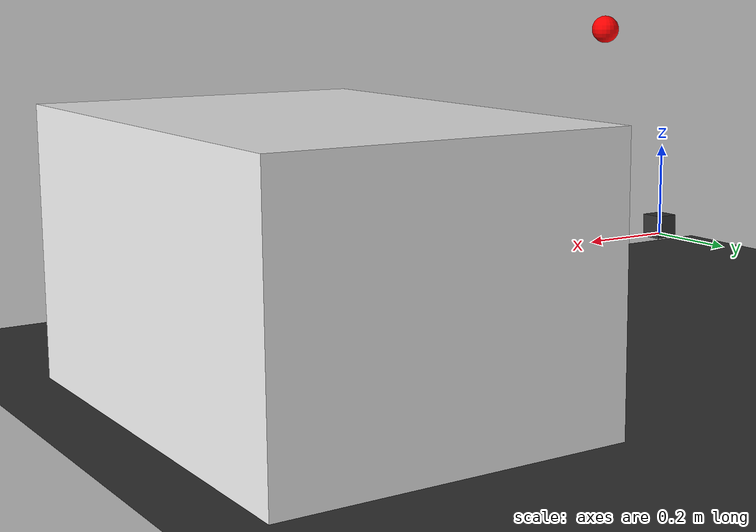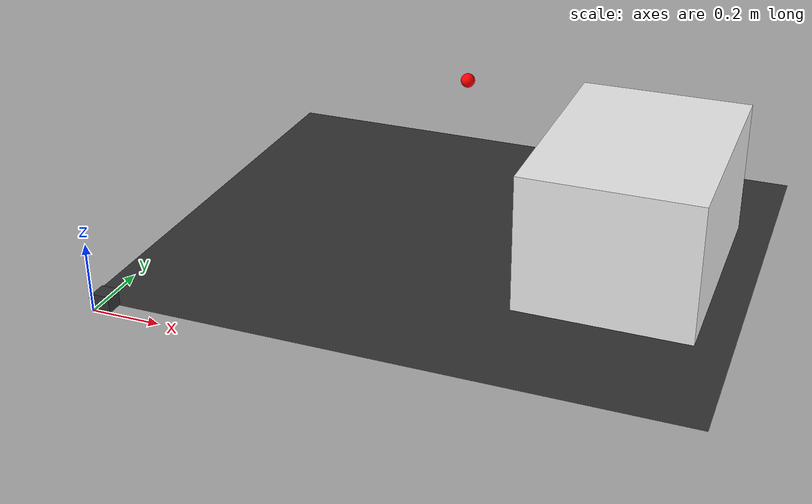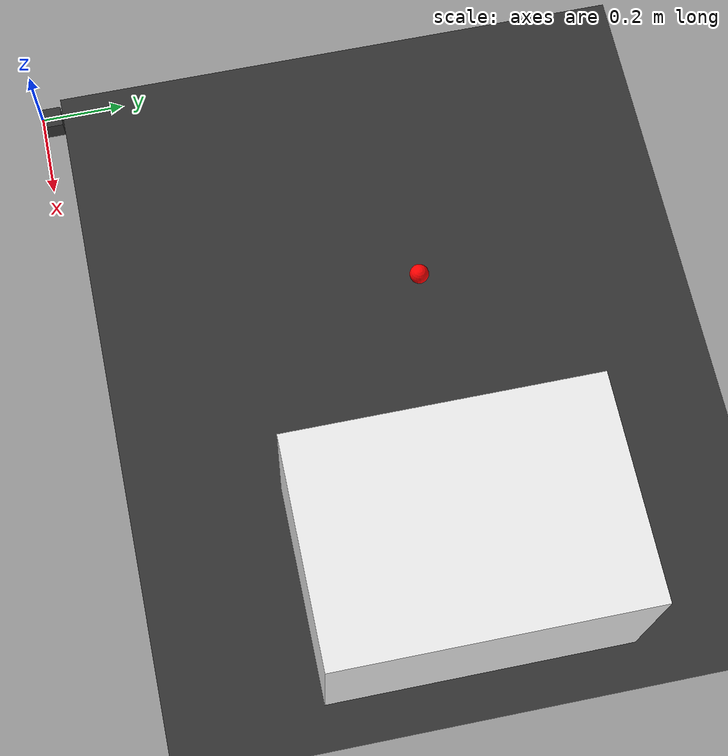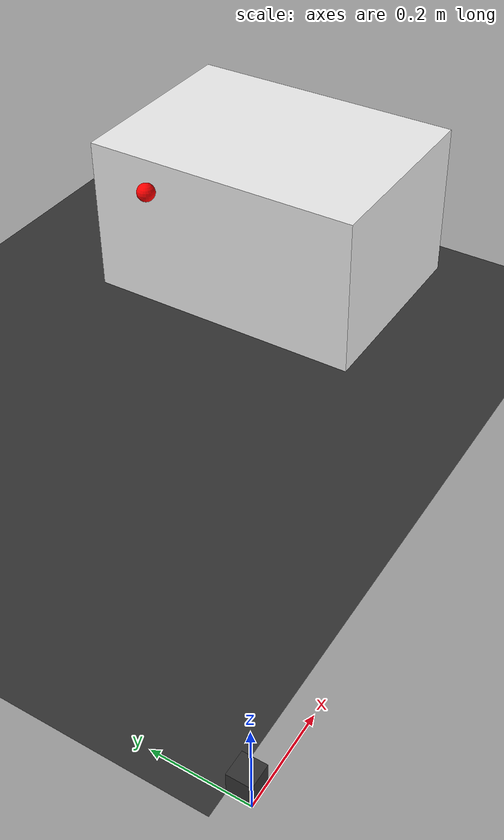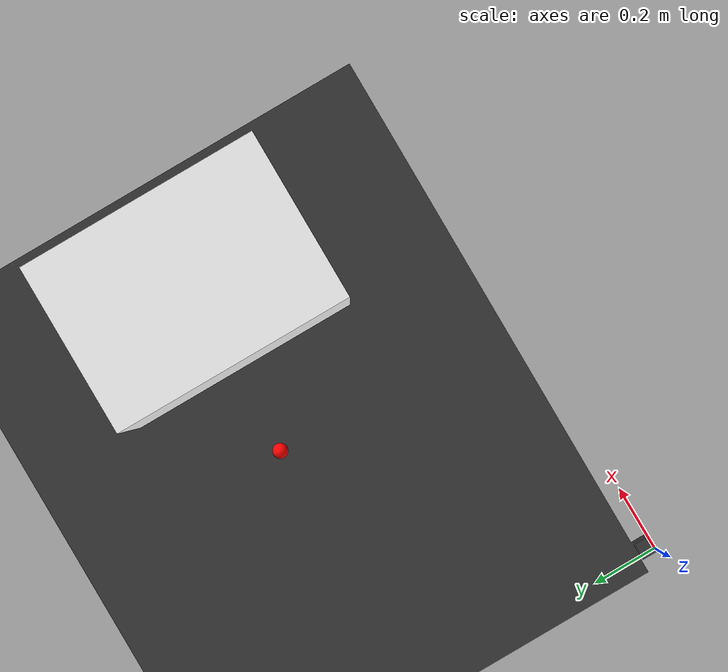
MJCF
<?xml version="1.0" encoding="utf-8"?>
<mujoco>
    <compiler angle="radian" coordinate="local" texturedir="./textures"/>
	<option timestep="0.002">
        <flag warmstart="enable"/>
	</option>

    <include file="shared.xml"/>

	<worldbody>
        <geom name="floor0" pos="0.8 0.75 0" size="0.85 0.7 1" type="plane" condim="3" material="floor_mat"/>
		<body name="floor0" pos="0.8 0.75 0">
            <site name="target0" pos="0 0 0.5" size="0.02 0.02 0.02" rgba="1 0 0 1" type="sphere"/>
		</body>

		<body pos="1.3 0.75 0.2" name="table0">
            <geom size="0.25 0.35 0.2" type="box" mass="2000" material="table_mat"/>
		</body>

		<body name="object0" pos="0.025 0.025 0.025">
            <joint name="object0:joint" type="free" damping="0.01"/>
            <geom size="0.025 0.025 0.025" type="box" condim="3" name="object0" material="block_mat" mass="2"/>
            <site name="object0" pos="0 0 0" size="0.02 0.02 0.02" rgba="1 0 0 1" type="sphere"/>
		</body>

	</worldbody>
</mujoco>

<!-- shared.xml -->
<mujoco>
    <asset>
        <texture type="skybox" builtin="gradient" rgb1="0.44 0.85 0.56" rgb2="0.46 0.87 0.58" width="32" height="32"/>
        <texture name="texture_block" file="block.png" gridsize="3 4" gridlayout=".U..LFRB.D.."/>

        <material name="floor_mat" specular="0" shininess="0.5" reflectance="0" rgba="0.2 0.2 0.2 1"/>
        <material name="table_mat" specular="0" shininess="0.5" reflectance="0" rgba="0.93 0.93 0.93 1"/>
        <material name="block_mat" specular="0" shininess="0.5" reflectance="0" rgba="0.2 0.2 0.2 1"/>
        <material name="puck_mat" specular="0" shininess="0.5" reflectance="0" rgba="0.2 0.2 0.2 1"/>
        <material name="robot0:geomMat" shininess="0.03" specular="0.4"/>
        <material name="robot0:gripper_finger_mat" shininess="0.03" specular="0.4" reflectance="0"/>
        <material name="robot0:gripper_mat" shininess="0.03" specular="0.4" reflectance="0"/>
        <material name="robot0:arm_mat" shininess="0.03" specular="0.4" reflectance="0"/>
        <material name="robot0:head_mat" shininess="0.03" specular="0.4" reflectance="0"/>
        <material name="robot0:torso_mat" shininess="0.03" specular="0.4" reflectance="0"/>
        <material name="robot0:base_mat" shininess="0.03" specular="0.4" reflectance="0"/>

        <mesh file="base_link_collision.stl" name="robot0:base_link"/>
        <mesh file="bellows_link_collision.stl" name="robot0:bellows_link"/>
        <mesh file="elbow_flex_link_collision.stl" name="robot0:elbow_flex_link"/>
        <mesh file="estop_link.stl" name="robot0:estop_link"/>
        <mesh file="forearm_roll_link_collision.stl" name="robot0:forearm_roll_link"/>
        <mesh file="gripper_link.stl" name="robot0:gripper_link"/>
        <mesh file="head_pan_link_collision.stl" name="robot0:head_pan_link"/>
        <mesh file="head_tilt_link_collision.stl" name="robot0:head_tilt_link"/>
        <mesh file="l_wheel_link_collision.stl" name="robot0:l_wheel_link"/>
        <mesh file="laser_link.stl" name="robot0:laser_link"/>
        <mesh file="r_wheel_link_collision.stl" name="robot0:r_wheel_link"/>
        <mesh file="torso_lift_link_collision.stl" name="robot0:torso_lift_link"/>
        <mesh file="shoulder_pan_link_collision.stl" name="robot0:shoulder_pan_link"/>
        <mesh file="shoulder_lift_link_collision.stl" name="robot0:shoulder_lift_link"/>
        <mesh file="upperarm_roll_link_collision.stl" name="robot0:upperarm_roll_link"/>
        <mesh file="wrist_flex_link_collision.stl" name="robot0:wrist_flex_link"/>
        <mesh file="wrist_roll_link_collision.stl" name="robot0:wrist_roll_link"/>
        <mesh file="torso_fixed_link.stl" name="robot0:torso_fixed_link"/>
    </asset>

    <equality>
        <weld body1="robot0:mocap" body2="robot0:gripper_link" solimp="0.9 0.95 0.001" solref="0.02 1"/>
    </equality>

    <contact>
        <exclude body1="robot0:r_gripper_finger_link" body2="robot0:l_gripper_finger_link"/>
        <exclude body1="robot0:torso_lift_link" body2="robot0:torso_fixed_link"/>
        <exclude body1="robot0:torso_lift_link" body2="robot0:shoulder_pan_link"/>
    </contact>

    <default>
        <default class="robot0:fetch">
            <geom margin="0.001" material="robot0:geomMat" rgba="1 1 1 1" solimp="0.99 0.99 0.01" solref="0.01 1"
                  type="mesh" user="0"/>
            <joint armature="1" damping="50" frictionloss="0" stiffness="0"/>

            <default class="robot0:fetchGripper">
                <geom condim="4" margin="0.001" type="box" user="0" rgba="0.356 0.361 0.376 1.0"/>
                <joint armature="100" damping="1000" limited="true" solimplimit="0.99 0.999 0.01" solreflimit="0.01 1"
                       type="slide"/>
            </default>

            <default class="robot0:grey">
                <geom rgba="0.356 0.361 0.376 1.0"/>
            </default>
            <default class="robot0:blue">
                <geom rgba="0.086 0.506 0.767 1.0"/>
            </default>
        </default>
    </default>
</mujoco>
